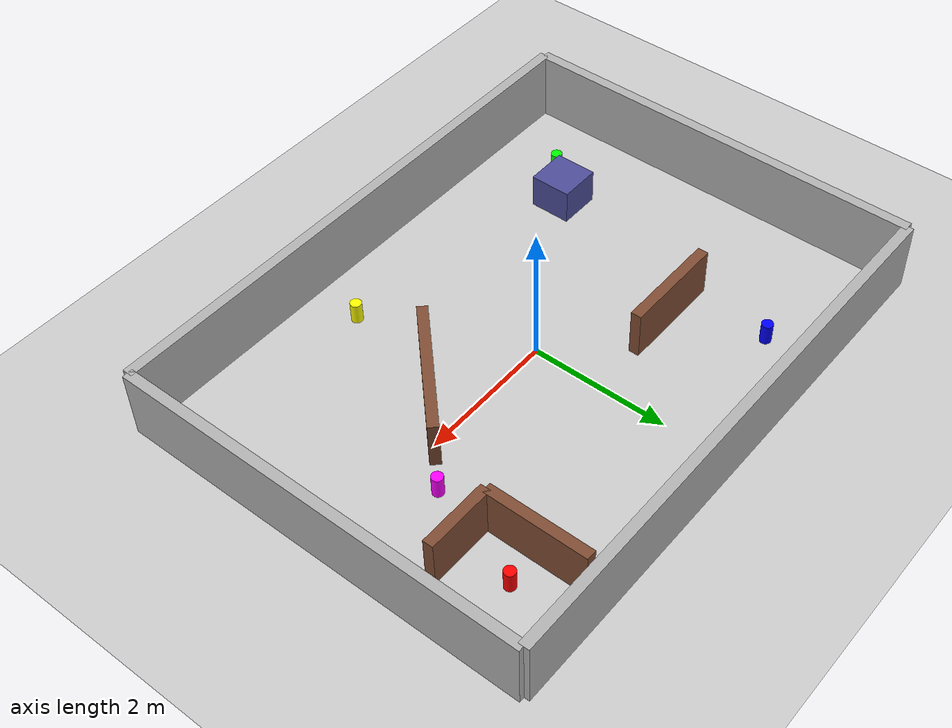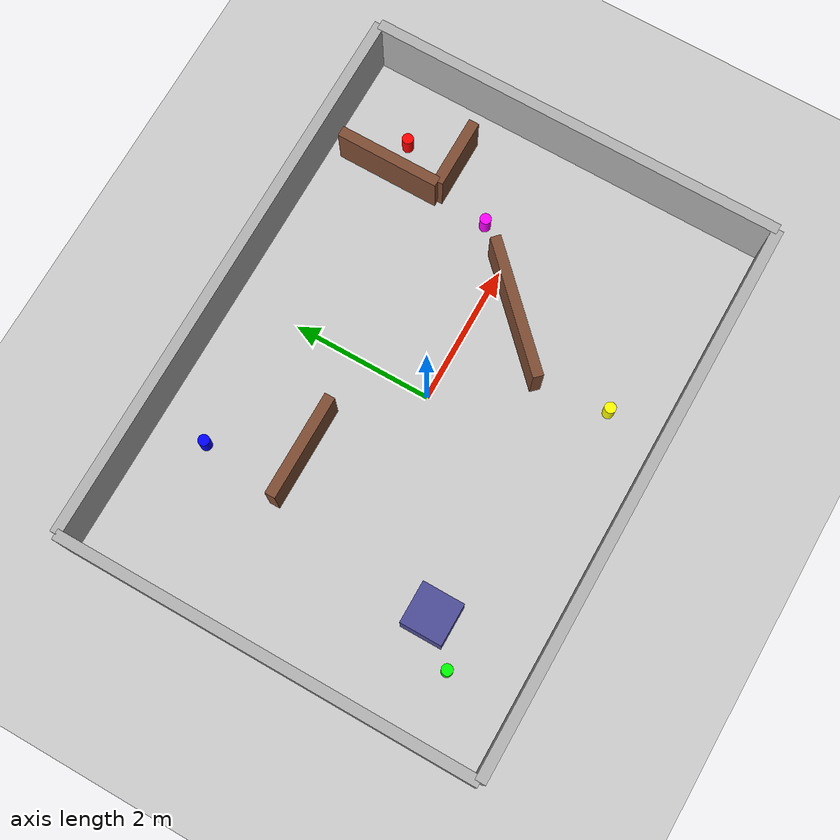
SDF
<?xml version="1.0" ?>
<sdf version="1.6">
  <world name="search_arena">

    <!-- Physics: real-time factor 1.0 -->
    <physics type="ode">
      <max_step_size>0.005</max_step_size>
      <real_time_factor>1.0</real_time_factor>
      <real_time_update_rate>200</real_time_update_rate>
    </physics>

    <!-- Lighting (inline to avoid model database fetch) -->
    <light name="sun" type="directional">
      <cast_shadows>true</cast_shadows>
      <pose>0 0 10 0 0 0</pose>
      <diffuse>0.8 0.8 0.8 1</diffuse>
      <specular>0.2 0.2 0.2 1</specular>
      <attenuation>
        <range>1000</range>
        <constant>0.9</constant>
        <linear>0.01</linear>
        <quadratic>0.001</quadratic>
      </attenuation>
      <direction>-0.5 0.1 -0.9</direction>
    </light>

    <model name="ground_plane">
      <static>true</static>
      <link name="link">
        <collision name="collision">
          <geometry><plane><normal>0 0 1</normal><size>100 100</size></plane></geometry>
        </collision>
        <visual name="visual">
          <geometry><plane><normal>0 0 1</normal><size>100 100</size></plane></geometry>
          <material><ambient>0.8 0.8 0.8 1</ambient></material>
        </visual>
      </link>
    </model>

    <!-- Room walls: ~8m x 6m indoor space                            -->

    <!-- North wall -->
    <model name="wall_north">
      <static>true</static>
      <pose>0 3 0.5 0 0 0</pose>
      <link name="link">
        <collision name="col"><geometry><box><size>8 0.15 1.0</size></box></geometry></collision>
        <visual name="vis"><geometry><box><size>8 0.15 1.0</size></box></geometry>
          <material><ambient>0.7 0.7 0.7 1</ambient></material>
        </visual>
      </link>
    </model>

    <!-- South wall -->
    <model name="wall_south">
      <static>true</static>
      <pose>0 -3 0.5 0 0 0</pose>
      <link name="link">
        <collision name="col"><geometry><box><size>8 0.15 1.0</size></box></geometry></collision>
        <visual name="vis"><geometry><box><size>8 0.15 1.0</size></box></geometry>
          <material><ambient>0.7 0.7 0.7 1</ambient></material>
        </visual>
      </link>
    </model>

    <!-- East wall -->
    <model name="wall_east">
      <static>true</static>
      <pose>4 0 0.5 0 0 0</pose>
      <link name="link">
        <collision name="col"><geometry><box><size>0.15 6 1.0</size></box></geometry></collision>
        <visual name="vis"><geometry><box><size>0.15 6 1.0</size></box></geometry>
          <material><ambient>0.7 0.7 0.7 1</ambient></material>
        </visual>
      </link>
    </model>

    <!-- West wall -->
    <model name="wall_west">
      <static>true</static>
      <pose>-4 0 0.5 0 0 0</pose>
      <link name="link">
        <collision name="col"><geometry><box><size>0.15 6 1.0</size></box></geometry></collision>
        <visual name="vis"><geometry><box><size>0.15 6 1.0</size></box></geometry>
          <material><ambient>0.7 0.7 0.7 1</ambient></material>
        </visual>
      </link>
    </model>

    <!-- Internal obstacles (partition walls, furniture-sized boxes)   -->

    <model name="obstacle_1">
      <static>true</static>
      <pose>-1.5 1.0 0.35 0 0 0</pose>
      <link name="link">
        <collision name="col"><geometry><box><size>1.5 0.15 0.7</size></box></geometry></collision>
        <visual name="vis"><geometry><box><size>1.5 0.15 0.7</size></box></geometry>
          <material><ambient>0.5 0.3 0.2 1</ambient></material>
        </visual>
      </link>
    </model>

    <model name="obstacle_2">
      <static>true</static>
      <pose>1.5 -0.5 0.35 0 0 0.785</pose>
      <link name="link">
        <collision name="col"><geometry><box><size>2.0 0.15 0.7</size></box></geometry></collision>
        <visual name="vis"><geometry><box><size>2.0 0.15 0.7</size></box></geometry>
          <material><ambient>0.5 0.3 0.2 1</ambient></material>
        </visual>
      </link>
    </model>

    <model name="obstacle_3">
      <static>true</static>
      <pose>-2.5 -1.5 0.25 0 0 0</pose>
      <link name="link">
        <collision name="col"><geometry><box><size>0.6 0.6 0.5</size></box></geometry></collision>
        <visual name="vis"><geometry><box><size>0.6 0.6 0.5</size></box></geometry>
          <material><ambient>0.3 0.3 0.6 1</ambient></material>
        </visual>
      </link>
    </model>

    <!-- L-shaped partition -->
    <model name="obstacle_4a">
      <static>true</static>
      <pose>2.5 2.0 0.35 0 0 0</pose>
      <link name="link">
        <collision name="col"><geometry><box><size>0.15 1.5 0.7</size></box></geometry></collision>
        <visual name="vis"><geometry><box><size>0.15 1.5 0.7</size></box></geometry>
          <material><ambient>0.5 0.3 0.2 1</ambient></material>
        </visual>
      </link>
    </model>
    <model name="obstacle_4b">
      <static>true</static>
      <pose>3.0 1.25 0.35 0 0 0</pose>
      <link name="link">
        <collision name="col"><geometry><box><size>1.0 0.15 0.7</size></box></geometry></collision>
        <visual name="vis"><geometry><box><size>1.0 0.15 0.7</size></box></geometry>
          <material><ambient>0.5 0.3 0.2 1</ambient></material>
        </visual>
      </link>
    </model>

    <!-- Target objects: coloured cylinders representing searchable   -->
    <!-- items. The swarm coordinator knows their poses and classes.  -->

    <model name="target_obj_0">
      <static>true</static>
      <pose>3.0 2.0 0.15 0 0 0</pose>
      <link name="link">
        <collision name="col"><geometry><cylinder><radius>0.08</radius><length>0.3</length></cylinder></geometry></collision>
        <visual name="vis"><geometry><cylinder><radius>0.08</radius><length>0.3</length></cylinder></geometry>
          <material><ambient>1 0 0 1</ambient></material>
        </visual>
      </link>
    </model>

    <model name="target_obj_1">
      <static>true</static>
      <pose>-3.0 -2.0 0.15 0 0 0</pose>
      <link name="link">
        <collision name="col"><geometry><cylinder><radius>0.08</radius><length>0.3</length></cylinder></geometry></collision>
        <visual name="vis"><geometry><cylinder><radius>0.08</radius><length>0.3</length></cylinder></geometry>
          <material><ambient>0 1 0 1</ambient></material>
        </visual>
      </link>
    </model>

    <model name="target_obj_2">
      <static>true</static>
      <pose>-2.0 2.2 0.15 0 0 0</pose>
      <link name="link">
        <collision name="col"><geometry><cylinder><radius>0.08</radius><length>0.3</length></cylinder></geometry></collision>
        <visual name="vis"><geometry><cylinder><radius>0.08</radius><length>0.3</length></cylinder></geometry>
          <material><ambient>0 0 1 1</ambient></material>
        </visual>
      </link>
    </model>

    <model name="target_obj_3">
      <static>true</static>
      <pose>1.0 -2.2 0.15 0 0 0</pose>
      <link name="link">
        <collision name="col"><geometry><cylinder><radius>0.08</radius><length>0.3</length></cylinder></geometry></collision>
        <visual name="vis"><geometry><cylinder><radius>0.08</radius><length>0.3</length></cylinder></geometry>
          <material><ambient>1 1 0 1</ambient></material>
        </visual>
      </link>
    </model>

    <model name="target_obj_4">
      <static>true</static>
      <pose>2.5 0.5 0.15 0 0 0</pose>
      <link name="link">
        <collision name="col"><geometry><cylinder><radius>0.08</radius><length>0.3</length></cylinder></geometry></collision>
        <visual name="vis"><geometry><cylinder><radius>0.08</radius><length>0.3</length></cylinder></geometry>
          <material><ambient>1 0 1 1</ambient></material>
        </visual>
      </link>
    </model>

  </world>
</sdf>
